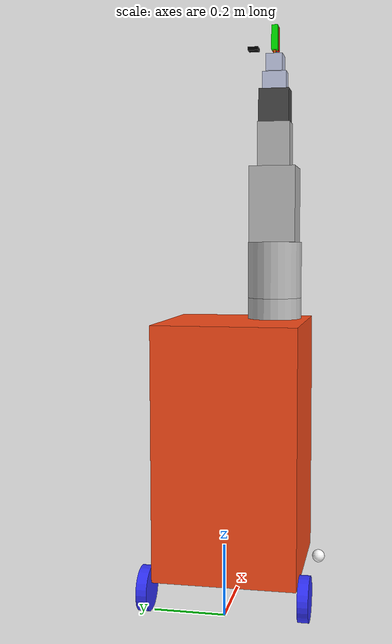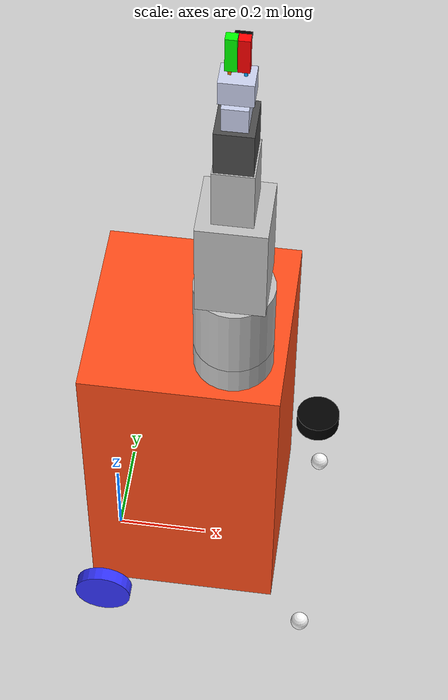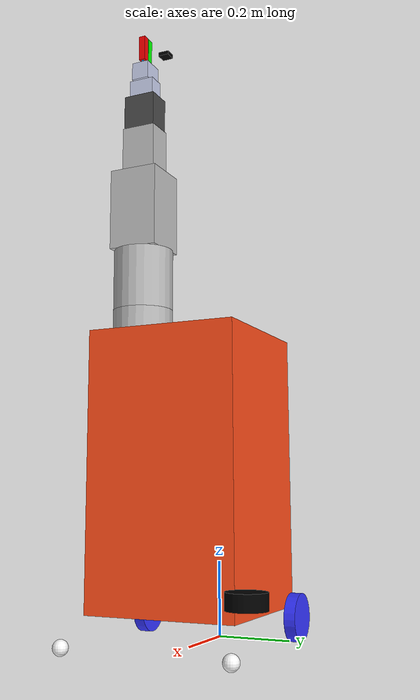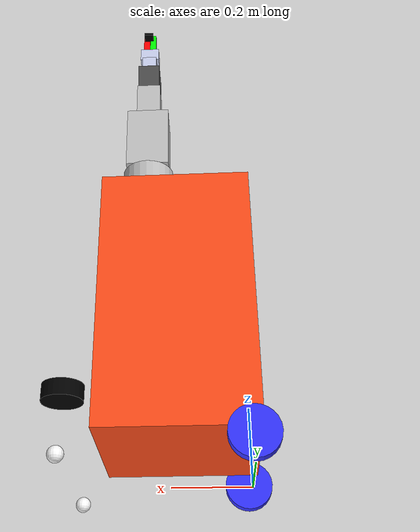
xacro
<?xml version="1.0"?>
<robot xmlns:xacro="http://www.ros.org/wiki/xacro" name="robot">
    <xacro:arg name="use_fake_controller" default="false"/>
    <xacro:arg name="initial_positions_file" default="initial_positions.yaml" />

    <!-- Import robot urdf file -->
    <xacro:include filename="$(find moveit_resources_robot_description)/urdf/robot.urdf" />

    <!-- Import control_xacro -->

    <xacro:if value="$(arg use_fake_controller)">
        <xacro:include filename="robot.ros2_control.xacro" />
        <xacro:robot_ros2_control name="FakeSystem" initial_positions_file="$(arg initial_positions_file)"/>
    </xacro:if>
    <xacro:unless value="$(arg use_fake_controller)">
        <xacro:include filename="robot_arm.ros2_control.xacro" />
        <xacro:include filename="robot_base.ros2_control.xacro" />
        <xacro:robot_arm_ros2_control name="RobotArmFakeJointDriver" />
        <xacro:robot_base_ros2_control name="RobotBaseFakeJointDriver" />
    </xacro:unless>

</robot>

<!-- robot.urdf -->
<!-- |    This document was autogenerated by xacro from robot_ignition.xacro           | -->
<!-- |    EDITING THIS FILE BY HAND IS NOT RECOMMENDED                                 | -->
<robot name="robot">
  <!-- Specify some standard inertial calculations https://en.wikipedia.org/wiki/List_of_moments_of_inertia -->
  <!-- These make use of xacro's mathematical functionality -->
  <material name="white">
    <color rgba="1 1 1 1"/>
  </material>
  <material name="orange">
    <color rgba="1 0.3 0.1 1"/>
  </material>
  <material name="blue">
    <color rgba="0.2 0.2 1 1"/>
  </material>
  <material name="black">
    <color rgba="0 0 0 1"/>
  </material>
  <material name="red">
    <color rgba="1 0 0 1"/>
  </material>
  <!-- BASE LINK -->
  <link name="base_link"/>
  <!-- BASE_FOOTPRINT LINK -->
  <joint name="base_footprint_joint" type="fixed">
    <parent link="base_link"/>
    <child link="base_footprint"/>
    <origin rpy="0 0 0" xyz="0 0 0"/>
  </joint>
  <link name="base_footprint">
    </link>
  <!-- BASE LINK -->
  <joint name="floor_joint" type="fixed">
    <parent link="base_link"/>
    <child link="floor"/>
    <origin xyz="0 0 0.0625"/>
  </joint>
  <link name="floor"/>
  <!-- BASE_FOOTPRINT LINK -->
  <!-- CHASSIS LINK -->
  <joint name="chassis_joint" type="fixed">
    <parent link="floor"/>
    <child link="chassis"/>
    <origin xyz="-0.025 0 0.025"/>
  </joint>
  <link name="chassis">
    <visual>
      <origin xyz="0.2025 0 0.36"/>
      <geometry>
        <box size="0.405 0.405 0.72"/>
      </geometry>
      <material name="orange"/>
    </visual>
    <collision>
      <origin xyz="0.2025 0 0.36"/>
      <geometry>
        <box size="0.405 0.405 0.72"/>
      </geometry>
    </collision>
    <inertial>
      <origin rpy="0 0 0" xyz="0.2025 0 0.36"/>
      <mass value="0.1"/>
      <inertia ixx="0.005686875" ixy="0.0" ixz="0.0" iyy="0.005686875" iyz="0.0" izz="0.0027337500000000003"/>
    </inertial>
  </link>
  <!-- LEFT WHEEL LINK -->
  <joint name="left_wheel_joint" type="continuous">
    <parent link="floor"/>
    <child link="left_wheel"/>
    <origin rpy="-1.5707963267948966 0 0" xyz="0 0.2225 0"/>
    <axis xyz="0 0 1"/>
  </joint>
  <link name="left_wheel">
    <visual>
      <geometry>
        <cylinder length="0.03" radius="0.0625"/>
      </geometry>
      <material name="blue"/>
    </visual>
    <collision>
      <geometry>
        <sphere radius="0.0625"/>
      </geometry>
    </collision>
    <inertial>
      <origin rpy="0 0 0" xyz="0 0 0"/>
      <mass value="0.05"/>
      <inertia ixx="5.2578125e-05" ixy="0.0" ixz="0.0" iyy="5.2578125e-05" iyz="0.0" izz="9.765625e-05"/>
    </inertial>
  </link>

  <!-- RIGHT WHEEL LINK -->
  <joint name="right_wheel_joint" type="continuous">
    <parent link="floor"/>
    <child link="right_wheel"/>
    <origin rpy="1.5707963267948966 0 0" xyz="0 -0.2225 0"/>
    <axis xyz="0 0 -1"/>
  </joint>
  <link name="right_wheel">
    <visual>
      <geometry>
        <cylinder length="0.03" radius="0.0625"/>
      </geometry>
      <material name="blue"/>
    </visual>
    <collision>
      <geometry>
        <sphere radius="0.0625"/>
      </geometry>
    </collision>
    <inertial>
      <origin rpy="0 0 0" xyz="0 0 0"/>
      <mass value="0.05"/>
      <inertia ixx="5.2578125e-05" ixy="0.0" ixz="0.0" iyy="5.2578125e-05" iyz="0.0" izz="9.765625e-05"/>
    </inertial>
  </link>

  <!-- CASTER WHEEL LINK -->
  <joint name="caster_wheel_joint" type="fixed">
    <parent link="chassis"/>
    <child link="caster_wheel"/>
    <origin xyz="0.475 0.2225 -0.06749999999999999"/>
  </joint>
  <link name="caster_wheel">
    <visual>
      <geometry>
        <sphere radius="0.02"/>
      </geometry>
      <material name="white"/>
    </visual>
    <collision>
      <geometry>
        <sphere radius="0.02"/>
      </geometry>
    </collision>
    <inertial>
      <origin rpy="0 0 0" xyz="0 0 0"/>
      <mass value="0.01"/>
      <inertia ixx="1.6000000000000001e-06" ixy="0.0" ixz="0.0" iyy="1.6000000000000001e-06" iyz="0.0" izz="1.6000000000000001e-06"/>
    </inertial>
  </link>
  <gazebo reference="caster_wheel">
      <material>Gazebo/White</material>
      <mu1 value="0.001"/>
      <mu2 value="0.001"/>
  </gazebo>

  <joint name="caster_wheel_joint2" type="fixed">
    <parent link="chassis"/>
    <child link="caster_wheel2"/>
    <origin xyz="0.475 -0.2225 -0.06749999999999999"/>
  </joint>
  <link name="caster_wheel2">
    <visual>
      <geometry>
        <sphere radius="0.02"/>
      </geometry>
      <material name="white"/>
    </visual>
    <collision>
      <geometry>
        <sphere radius="0.02"/>
      </geometry>
    </collision>
    <inertial>
      <origin rpy="0 0 0" xyz="0 0 0"/>
      <mass value="0.01"/>
      <inertia ixx="1.6000000000000001e-06" ixy="0.0" ixz="0.0" iyy="1.6000000000000001e-06" iyz="0.0" izz="1.6000000000000001e-06"/>
    </inertial>
  </link>
  <gazebo reference="caster_wheel2">
      <material>Gazebo/White</material>
      <mu1 value="0.001"/>
      <mu2 value="0.001"/>
  </gazebo>

  <joint name="robot_joint0" type="fixed">
    <origin rpy="0 0 0.0" xyz="0.3 -0.1 0.72"/>
    <parent link="chassis"/>
    <child link="robot_link0"/>
  </joint>
  <link name="robot_link0">
    <inertial>
      <origin rpy="0 0 0" xyz="0 0 0.031"/>
      <mass value="0.001246584"/>
      <inertia ixx="2.3938568079999997e-06" ixy="0.0" ixz="0.0" iyy="2.3938568079999997e-06" iyz="0.0" izz="3.9890688e-06"/>
    </inertial>
    <visual>
      <origin rpy="0 0 0" xyz="0 0 0.031"/>
      <geometry>
        <cylinder length="0.062" radius="0.08"/>
      </geometry>
      <material name="">
        <color rgba="0.75294 0.75294 0.75294 1"/>
      </material>
    </visual>
    <collision>
      <origin rpy="0 0 0" xyz="0 0 0.031"/>
      <geometry>
        <cylinder length="0.062" radius="0.08"/>
      </geometry>
    </collision>
  </link>
  <joint name="robot_joint1" type="revolute">
    <origin rpy="0 0 0" xyz="0 0 0.062"/>
    <parent link="robot_link0"/>
    <child link="robot_link1"/>
    <axis xyz="0 0 1"/>
    <limit effort="100" lower="-1.5707963267948966" upper="1.5707963267948966" velocity="100"/>
  </joint>
  <link name="robot_link1">
    <inertial>
      <origin rpy="0 0 0" xyz="0 0 0.08275"/>
      <mass value="0.003327575"/>
      <inertia ixx="1.2919379261979165e-05" ixy="0.0" ixz="0.0" iyy="1.2919379261979165e-05" iyz="0.0" izz="1.064824e-05"/>
    </inertial>
    <visual>
      <origin rpy="0 0 0" xyz="0 0 0.08275"/>
      <geometry>
        <cylinder length="0.1655" radius="0.08"/>
      </geometry>
      <material name="">
        <color rgba="0.75294 0.75294 0.75294 1"/>
      </material>
    </visual>
    <collision>
      <origin rpy="0 0 0" xyz="0 0 0.08275"/>
      <geometry>
        <cylinder length="0.1655" radius="0.08"/>
      </geometry>
    </collision>
  </link>
  <link name="robot_link2">
    <inertial>
      <origin rpy="0 0 0" xyz="0 0 0.1101"/>
      <mass value="0.003989399"/>
      <inertia ixx="2.214289318956667e-05" ixy="0.0" ixz="0.0" iyy="2.214289318956667e-05" iyz="0.0" izz="1.2046096664473334e-05"/>
    </inertial>
    <visual>
      <origin rpy="0 0 0" xyz="0 0 0.1101"/>
      <geometry>
        <box size="0.1346 0.1346 0.2202"/>
      </geometry>
      <material name="">
        <color rgba="0.75294 0.75294 0.75294 1"/>
      </material>
    </visual>
    <collision>
      <origin rpy="0 0 0" xyz="0 0 0.1101"/>
      <geometry>
        <box size="0.1346 0.1346 0.2202"/>
      </geometry>
    </collision>
  </link>
  <joint name="robot_joint2" type="revolute">
    <origin rpy="0 0 0" xyz="0 0 0.1655"/>
    <parent link="robot_link1"/>
    <child link="robot_link2"/>
    <axis xyz="1 0 0"/>
    <limit effort="5" lower="-1.570796327" upper="1.570796327" velocity="1"/>
  </joint>
  <link name="robot_link3">
    <inertial>
      <origin rpy="0 0 0" xyz="0 0 0.06495"/>
      <mass value="0.000957623"/>
      <inertia ixx="2.0667906377691666e-06" ixy="0.0" ixz="0.0" iyy="1.8271263295591664e-06" iyz="0.0" izz="1.2007602876233333e-06"/>
    </inertial>
    <visual>
      <origin rpy="0 0 0" xyz="0 0 0.06495"/>
      <geometry>
        <box size="0.0776 0.095 0.1299"/>
      </geometry>
      <material name="">
        <color rgba="0.75294 0.75294 0.75294 1"/>
      </material>
    </visual>
    <collision>
      <origin rpy="0 0 0" xyz="0 0 0.06495"/>
      <geometry>
        <box size="0.0776 0.095 0.1299"/>
      </geometry>
    </collision>
  </link>
  <joint name="robot_joint3" type="revolute">
    <origin rpy="0 0 0" xyz="0 0 0.2202"/>
    <parent link="robot_link2"/>
    <child link="robot_link3"/>
    <axis xyz="1 0 0"/>
    <limit effort="5" lower="-1.65" upper="1.65" velocity="1"/>
  </joint>
  <link name="robot_link4">
    <inertial>
      <origin rpy="0 0 0" xyz="0 0 0.04745"/>
      <mass value="0.000607957"/>
      <inertia ixx="8.584768277283333e-07" ixy="0.0" ixz="0.0" iyy="7.181806173616666e-07" iyz="0.0" izz="6.641129748283332e-07"/>
    </inertial>
    <visual>
      <origin rpy="0 0 0" xyz="0 0 0.04745"/>
      <geometry>
        <box size="0.0719 0.0891 0.0949"/>
      </geometry>
      <material name="">
        <color rgba="0.29412 0.29412 0.29412 1"/>
      </material>
    </visual>
    <collision>
      <origin rpy="0 0 0" xyz="0 0 0.04745"/>
      <geometry>
        <box size="0.0719 0.0891 0.0949"/>
      </geometry>
    </collision>
  </link>
  <joint name="robot_joint4" type="revolute">
    <origin rpy="0 0 0" xyz="0 0 0.1299"/>
    <parent link="robot_link3"/>
    <child link="robot_link4"/>
    <axis xyz="0 0 1"/>
    <limit effort="5" lower="-3.14" upper="3.14" velocity="1"/>
  </joint>
  <link name="robot_link5">
    <inertial>
      <origin rpy="0 0 0" xyz="0 0 0.0255"/>
      <mass value="0.00017136"/>
      <inertia ixx="1.0711428000000001e-07" ixy="0.0" ixz="0.0" iyy="7.00434e-08" iyz="0.0" izz="1.0287312000000001e-07"/>
    </inertial>
    <visual>
      <origin rpy="0 0 0" xyz="0 0 0.0255"/>
      <geometry>
        <box size="0.048 0.07 0.051"/>
      </geometry>
      <material name="">
        <color rgba="0.79216 0.81961 0.93333 1"/>
      </material>
    </visual>
    <collision>
      <origin rpy="0 0 0" xyz="0 0 0.0255"/>
      <geometry>
        <box size="0.048 0.07 0.051"/>
      </geometry>
    </collision>
  </link>
  <joint name="robot_joint5" type="revolute">
    <origin rpy="0 0 0" xyz="0 0 0.0949"/>
    <parent link="robot_link4"/>
    <child link="robot_link5"/>
    <axis xyz="1 0 0"/>
    <limit effort="5" lower="-1.570796327" upper="1.570796327" velocity="1"/>
  </joint>
  <link name="robot_link6"/>
  <joint name="robot_joint6" type="revolute">
    <origin rpy="0 0 0" xyz="0 0 0.051"/>
    <parent link="robot_link5"/>
    <child link="robot_link6"/>
    <axis xyz="0 0 1"/>
    <limit effort="5" lower="-3" upper="3" velocity="1"/>
  </joint>
  <link name="robot_link7"/>
  <joint name="robot_joint7" type="fixed">
    <origin rpy="0 0 0" xyz="0 0 0"/>
    <parent link="robot_link6"/>
    <child link="robot_link7"/>
    <axis xyz="0 0 0"/>
  </joint>
  <link name="robot_hand">
    <inertial>
      <origin rpy="0 0 0" xyz="0 0 0.0245"/>
      <mass value="0.000151743"/>
      <inertia ixx="8.086940861000001e-08" ixy="0.0" ixz="0.0" iyy="6.07224905e-08" iyz="0.0" izz="8.086940861000001e-08"/>
    </inertial>
    <visual>
      <origin rpy="0 0 0" xyz="0 0 0.0245"/>
      <geometry>
        <box size="0.049 0.0632 0.049"/>
      </geometry>
      <material name="">
        <color rgba="0.79216 0.81961 0.93333 1"/>
      </material>
    </visual>
    <collision>
      <origin rpy="0 0 0" xyz="0 0 0.0245"/>
      <geometry>
        <box size="0.049 0.0632 0.049"/>
      </geometry>
    </collision>
  </link>
  <joint name="robot_hand_joint" type="fixed">
    <origin rpy="0 0 1.570796327" xyz="0 0 0"/>
    <parent link="robot_link7"/>
    <child link="robot_hand"/>
  </joint>

  <link name="Gripper_Servo_Gear">
    <inertial>
      <origin rpy="0 0 0" xyz="0.0 0.0 0.01995"/>
      <mass value="0.000476207785199474"/>
      <inertia ixx="0.001" ixy="0" ixz="0" iyy="0.001" iyz="0" izz="0.001"/>
    </inertial>
    <visual>
      <origin rpy="0 0 0" xyz="0 0 0.01995"/>
      <geometry>
        <box size="0.006 0.006 0.0399"/>
      </geometry>
      <material name="">
        <color rgba="0.9098 0.44314 0.031373 1"/>
      </material>
    </visual>
    <collision>
      <origin rpy="0 0 0" xyz="0 0 0.01995"/>
      <geometry>
        <box size="0.006 0.006 0.0399"/>
      </geometry>
    </collision>
  </link>
  <joint name="robot_finger_joint1" type="revolute">
    <origin rpy="0.0 0.0 0.0" xyz="0 0.014 0.022"/>
    <parent link="robot_hand"/>
    <child link="Gripper_Servo_Gear"/>
    <axis xyz="1 0 0"/>
    <limit effort="5.0" lower="-1.5" upper="1.5" velocity="1.0"/>
  </joint>
  <link name="robot_rightfinger">
    <inertial>
      <origin rpy="0 0 0" xyz="0.0 0.003 0.035"/>
      <mass value="0.000476207785199474"/>
      <inertia ixx="0.001" ixy="0" ixz="0" iyy="0.001" iyz="0" izz="0.001"/>
    </inertial>
    <visual>
      <origin rpy="0 0 0" xyz="0 -0.003 0.035"/>
      <geometry>
        <box size="0.018 0.021 0.07"/>
      </geometry>
      <material name="">
        <color rgba="0 1 0 1"/>
      </material>
    </visual>
    <collision>
      <origin rpy="0 0 0" xyz="0 -0.003 0.035"/>
      <geometry>
        <box size="0.018 0.021 0.07"/>
      </geometry>
    </collision>
  </link>
  <joint name="Tip_Gripper_Servo_Joint" type="revolute">
    <origin rpy="0 0 0" xyz="0 0 0.04"/>
    <parent link="Gripper_Servo_Gear"/>
    <child link="robot_rightfinger"/>
    <axis xyz="1 0 0"/>
    <limit effort="5.0" lower="-1.5" upper="1.5" velocity="1.0"/>
  </joint>
  <link name="Gripper_Idol_Gear">
    <inertial>
      <origin rpy="0 0 0" xyz="0.0 0.0 0.01995"/>
      <mass value="0.000476207785199481"/>
      <inertia ixx="0.001" ixy="0" ixz="0" iyy="0.001" iyz="0" izz="0.001"/>
    </inertial>
    <visual>
      <origin rpy="0 0 0" xyz="0 0 0.01995"/>
      <geometry>
        <box size="0.006 0.006 0.0399"/>
      </geometry>
      <material name="">
        <color rgba="0.058824 0.64706 1 1"/>
      </material>
    </visual>
    <collision>
      <origin rpy="0 0 0" xyz="0 0 0.01995"/>
      <geometry>
        <box size="0.006 0.006 0.0399"/>
      </geometry>
    </collision>
  </link>
  <joint name="robot_finger_joint2" type="revolute">
    <origin rpy="0.0 0.0 0.0" xyz="0 -0.014 0.022"/>
    <parent link="robot_hand"/>
    <child link="Gripper_Idol_Gear"/>
    <axis xyz="1 0 0"/>
    <limit effort="5.0" lower="-1.5" upper="1.5" velocity="1.0"/>
  </joint>
  <link name="robot_leftfinger">
    <inertial>
      <origin rpy="0 0 0" xyz="0.0 0.003 0.035"/>
      <mass value="0.000476207785199481"/>
      <inertia ixx="0.001" ixy="0" ixz="0" iyy="0.001" iyz="0" izz="0.001"/>
    </inertial>
    <visual>
      <origin rpy="0 0 0" xyz="0 0.003 0.035"/>
      <geometry>
        <box size="0.018 0.021 0.07"/>
      </geometry>
      <material name="">
        <color rgba="1 0 0 1"/>
      </material>
    </visual>
    <collision>
      <origin rpy="0 0 0" xyz="0 0.003 0.035"/>
      <geometry>
        <box size="0.018 0.021 0.07"/>
      </geometry>
    </collision>
  </link>
  <joint name="Tip_Gripper_Idol_Joint" type="revolute">
    <origin rpy="0 0 0" xyz="0 0 0.04"/>
    <parent link="Gripper_Idol_Gear"/>
    <child link="robot_leftfinger"/>
    <axis xyz="1 0 0"/>
    <limit effort="5.0" lower="-1.5" upper="1.5" velocity="1.0"/>
  </joint>

  <joint name="camera_joint" type="fixed">
      <parent link="robot_hand"/>
      <child link="camera_link"/>
      <origin rpy="1.570796327 -1.570796327 1.570796327" xyz="0.0645 0 0.0685"/>
  </joint>

  <link name="camera_link">
      <visual>
          <geometry>
              <box size="0.010 0.03 0.03"/>
          </geometry>
          <material name="black"/>
      </visual>
  </link>

  <joint name="camera_optical_joint" type="fixed">
      <parent link="camera_link"/>
      <child link="camera_link_optical"/>
      <origin xyz="0 0 0" rpy="0 0 0"/>
  </joint>

  <link name="camera_link_optical"></link>

  <gazebo reference="camera_link">
      <material>Gazebo/Black</material>

      <sensor name="camera" type="camera">
          <pose> 0 0 0 0 0 0 </pose>
          <visualize>true</visualize>
          <update_rate>10</update_rate>
          <camera>
              <horizontal_fov>1.280375995</horizontal_fov>
              <image>
                  <format>R8G8B8</format>
                  <width>1280</width>
                  <height>720</height>
              </image>
              <clip>
                  <near>0.05</near>
                  <far>8.0</far>
              </clip>
          </camera>
          <plugin name="camera_controller" filename="libgazebo_ros_camera.so">
              <frame_name>camera_link_optical</frame_name>
          </plugin>
      </sensor>
  </gazebo>

    <joint name="laser_joint" type="fixed">
        <parent link="base_link"/>
        <child link="laser_frame"/>
        <origin xyz="0.437 0.255 0.15" rpy="0 0 0"/>
    </joint>

    <link name="laser_frame">
        <visual>
            <geometry>
                <cylinder radius="0.05" length="0.04"/>
            </geometry>
            <material name="black"/>
        </visual>
        <collision>
            <geometry>
                <cylinder radius="0.05" length="0.04"/>
            </geometry>
        </collision>
        <inertial>
            <origin xyz="0 0 0" rpy="0 0 0"/>
            <mass value="0.001" />
            <inertia ixx="0.00000075833" ixy="0.0" ixz="0.0"
                    iyy="0.00000075833" iyz="0.0"
                    izz="0.00000020833" />
        </inertial>
    </link>

    <gazebo reference="laser_frame">
        <material>Gazebo/Black</material>

        <sensor name="laser" type="ray">
            <pose> 0 0 0 0 0 0 </pose>
            <visualize>true</visualize>
            <update_rate>10</update_rate>
            <ray>
                <scan>
                    <horizontal>
                        <samples>360</samples>
                        <min_angle>-3.14</min_angle>
                        <max_angle>3.14</max_angle>
                    </horizontal>
                </scan>
                <range>
                    <min>0.3</min>
                    <max>12</max>
                </range>
            </ray>
            <plugin name="laser_controller" filename="libgazebo_ros_ray_sensor.so">
                <ros>
                    <argument>~/out:=scan</argument>
                </ros>
                <output_type>sensor_msgs/LaserScan</output_type>
                <frame_name>laser_frame</frame_name>
            </plugin>
        </sensor>
    </gazebo>

</robot>
